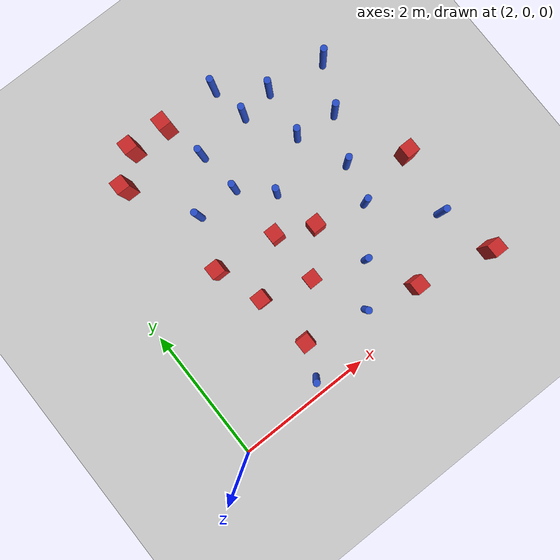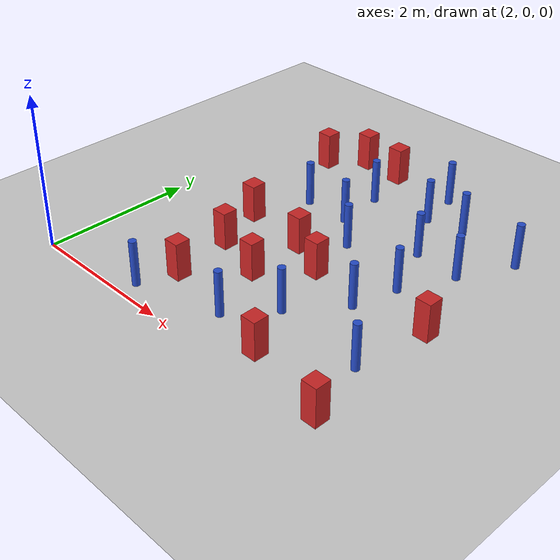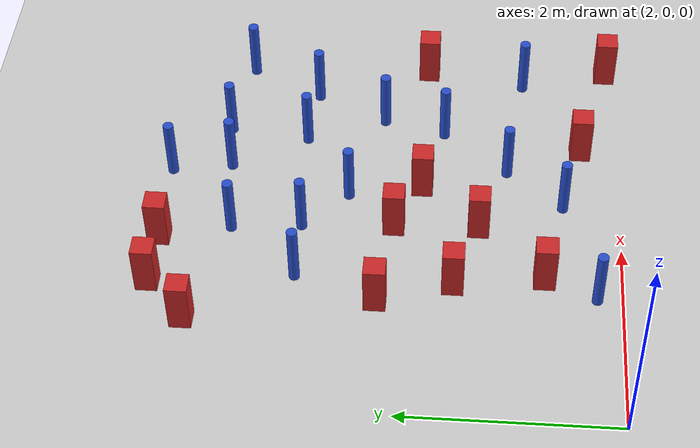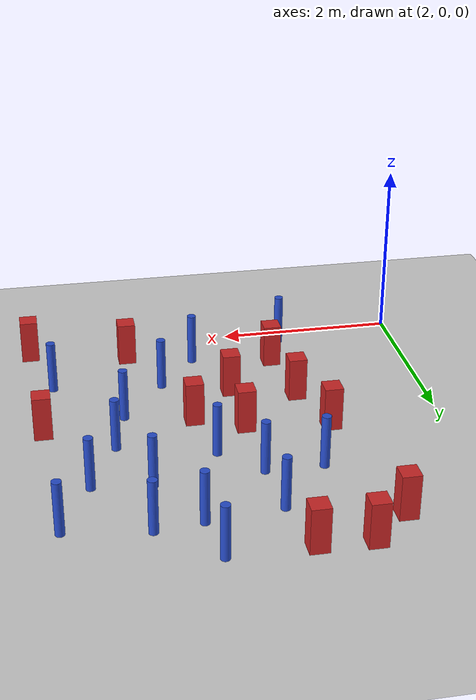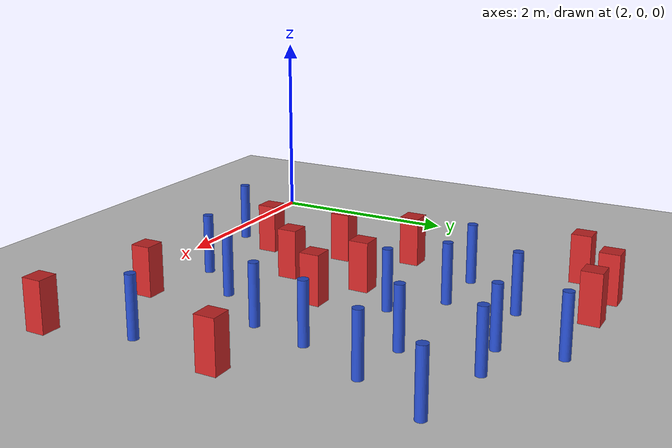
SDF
<sdf version="1.6">
 <world name="default">
  <model name="ground_plane">
   <static>1</static>
   <link name="link">
    <collision name="collision">
     <geometry><plane><normal>0 0 1</normal><size>100 100</size></plane></geometry>
     <surface><friction><ode><mu>100</mu><mu2>50</mu2></ode></friction></surface>
    </collision>
    <visual name="visual">
     <cast_shadows>0</cast_shadows>
     <geometry><plane><normal>0 0 1</normal><size>100 100</size></plane></geometry>
     <material>
      <ambient>1.0 1.0 1.0 1.0</ambient>
      <diffuse>0.8 0.8 0.8 1.0</diffuse>
      <specular>0.01 0.01 0.01 1.000000</specular>
     </material>
    </visual>
   </link>
  </model>
  <model name="pole_obstacle5">
   <static>true</static>
   <pose>4.54238996978 2.56478637814 7.38925637345e-09 -8.47170692798e-08 1.24976764937e-08 -1.74513093023e-07</pose>
   <link name="link">
    <pose>0 0 0.3 0 -0 0</pose>
    <inertial>
     <mass>1</mass>
     <inertia><ixx>0.145833</ixx><ixy>0</ixy><ixz>0</ixz><iyy>0.145833</iyy><iyz>0</iyz><izz>0.125</izz></inertia>
    </inertial>
    <collision name="collision">
     <geometry><cylinder><radius>0.05</radius><length>.6</length></cylinder></geometry>
    </collision>
    <visual name="visual">
     <geometry><cylinder><radius>0.05</radius><length>.6</length></cylinder></geometry>
     <material>
      <script><name>Gazebo/Blue</name><uri>file://media/materials/scripts/gazebo.material</uri></script>
     </material>
    </visual>
   </link>
  </model>
  <model name="pole_obstacle9">
   <static>true</static>
   <pose>4.86439608183 3.7236601719 7.38925637345e-09 -8.47170692798e-08 1.24976764937e-08 -1.74513093023e-07</pose>
   <link name="link">
    <pose>0 0 0.3 0 -0 0</pose>
    <inertial>
     <mass>1</mass>
     <inertia><ixx>0.145833</ixx><ixy>0</ixy><ixz>0</ixz><iyy>0.145833</iyy><iyz>0</iyz><izz>0.125</izz></inertia>
    </inertial>
    <collision name="collision">
     <geometry><cylinder><radius>0.05</radius><length>.6</length></cylinder></geometry>
    </collision>
    <visual name="visual">
     <geometry><cylinder><radius>0.05</radius><length>.6</length></cylinder></geometry>
     <material>
      <script><name>Gazebo/Blue</name><uri>file://media/materials/scripts/gazebo.material</uri></script>
     </material>
    </visual>
   </link>
  </model>
  <model name="square_post_obstacle17">
   <static>true</static>
   <pose>5.25384583525 0.369909139949 1.91545236811e-07 -7.35059704564e-06 1.12565212e-07 2.39332434364e-05</pose>
   <link name="link">
    <pose>0 0 0.25 0 -0 0</pose>
    <inertial>
     <mass>100</mass>
     <inertia>
      <ixx>0.166667</ixx>
      <ixy>0</ixy>
      <ixz>0</ixz>
      <iyy>0.166667</iyy>
      <iyz>0</iyz>
      <izz>0.166667</izz>
     </inertia>
    </inertial>
    <collision name="collision"><geometry><box><size>.2 .2 .5</size></box></geometry></collision>
    <visual name="visual">
     <geometry><box><size>.2 .2 .5</size></box></geometry>
     <material>
      <script><name>Gazebo/Red</name><uri>file://media/materials/scripts/gazebo.material</uri></script>
     </material>
    </visual>
   </link>
  </model>
  <model name="pole_obstacle34">
   <static>true</static>
   <pose>6.15226355741 0.936716093503 7.38925637345e-09 -8.47170692799e-08 1.24976765038e-08 -1.74513093018e-07</pose>
   <link name="link">
    <pose>0 0 0.3 0 -0 0</pose>
    <inertial>
     <mass>1</mass>
     <inertia><ixx>0.145833</ixx><ixy>0</ixy><ixz>0</ixz><iyy>0.145833</iyy><iyz>0</iyz><izz>0.125</izz></inertia>
    </inertial>
    <collision name="collision">
     <geometry><cylinder><radius>0.05</radius><length>.6</length></cylinder></geometry>
    </collision>
    <visual name="visual">
     <geometry><cylinder><radius>0.05</radius><length>.6</length></cylinder></geometry>
     <material>
      <script><name>Gazebo/Blue</name><uri>file://media/materials/scripts/gazebo.material</uri></script>
     </material>
    </visual>
   </link>
  </model>
  <model name="pole_obstacle36">
   <static>true</static>
   <pose>4.49692211645 0.537638080862 7.38925637345e-09 -8.471706928e-08 1.24976765164e-08 -1.74513093012e-07</pose>
   <link name="link">
    <pose>0 0 0.3 0 -0 0</pose>
    <inertial>
     <mass>1</mass>
     <inertia><ixx>0.145833</ixx><ixy>0</ixy><ixz>0</ixz><iyy>0.145833</iyy><iyz>0</iyz><izz>0.125</izz></inertia>
    </inertial>
    <collision name="collision">
     <geometry><cylinder><radius>0.05</radius><length>.6</length></cylinder></geometry>
    </collision>
    <visual name="visual">
     <geometry><cylinder><radius>0.05</radius><length>.6</length></cylinder></geometry>
     <material>
      <script><name>Gazebo/Blue</name><uri>file://media/materials/scripts/gazebo.material</uri></script>
     </material>
    </visual>
   </link>
  </model>
  <model name="square_post_obstacle44">
   <static>true</static>
   <pose>3.23896728383 2.22645428364 1.91545236811e-07 -7.35059704564e-06 1.12565212e-07 2.39332434364e-05</pose>
   <link name="link">
    <pose>0 0 0.25 0 -0 0</pose>
    <inertial>
     <mass>100</mass>
     <inertia>
      <ixx>0.166667</ixx>
      <ixy>0</ixy>
      <ixz>0</ixz>
      <iyy>0.166667</iyy>
      <iyz>0</iyz>
      <izz>0.166667</izz>
     </inertia>
    </inertial>
    <collision name="collision"><geometry><box><size>.2 .2 .5</size></box></geometry></collision>
    <visual name="visual">
     <geometry><box><size>.2 .2 .5</size></box></geometry>
     <material>
      <script><name>Gazebo/Red</name><uri>file://media/materials/scripts/gazebo.material</uri></script>
     </material>
    </visual>
   </link>
  </model>
  <model name="pole_obstacle55">
   <static>true</static>
   <pose>5.42195279625 1.69428588885 7.38925637345e-09 -8.471706928e-08 1.24976765134e-08 -1.74513093015e-07</pose>
   <link name="link">
    <pose>0 0 0.3 0 -0 0</pose>
    <inertial>
     <mass>1</mass>
     <inertia><ixx>0.145833</ixx><ixy>0</ixy><ixz>0</ixz><iyy>0.145833</iyy><iyz>0</iyz><izz>0.125</izz></inertia>
    </inertial>
    <collision name="collision">
     <geometry><cylinder><radius>0.05</radius><length>.6</length></cylinder></geometry>
    </collision>
    <visual name="visual">
     <geometry><cylinder><radius>0.05</radius><length>.6</length></cylinder></geometry>
     <material>
      <script><name>Gazebo/Blue</name><uri>file://media/materials/scripts/gazebo.material</uri></script>
     </material>
    </visual>
   </link>
  </model>
  <model name="square_post_obstacle58">
   <static>true</static>
   <pose>3.34307952893 4.29897692383 1.91545236811e-07 -7.35059704564e-06 1.12565212e-07 2.39332434364e-05</pose>
   <link name="link">
    <pose>0 0 0.25 0 -0 0</pose>
    <inertial>
     <mass>100</mass>
     <inertia>
      <ixx>0.166667</ixx>
      <ixy>0</ixy>
      <ixz>0</ixz>
      <iyy>0.166667</iyy>
      <iyz>0</iyz>
      <izz>0.166667</izz>
     </inertia>
    </inertial>
    <collision name="collision"><geometry><box><size>.2 .2 .5</size></box></geometry></collision>
    <visual name="visual">
     <geometry><box><size>.2 .2 .5</size></box></geometry>
     <material>
      <script><name>Gazebo/Red</name><uri>file://media/materials/scripts/gazebo.material</uri></script>
     </material>
    </visual>
   </link>
  </model>
  <model name="pole_obstacle103">
   <static>true</static>
   <pose>5.36540105432 3.78649801736 7.38925637345e-09 -8.47170692798e-08 1.24976764937e-08 -1.74513093023e-07</pose>
   <link name="link">
    <pose>0 0 0.3 0 -0 0</pose>
    <inertial>
     <mass>1</mass>
     <inertia><ixx>0.145833</ixx><ixy>0</ixy><ixz>0</ixz><iyy>0.145833</iyy><iyz>0</iyz><izz>0.125</izz></inertia>
    </inertial>
    <collision name="collision">
     <geometry><cylinder><radius>0.05</radius><length>.6</length></cylinder></geometry>
    </collision>
    <visual name="visual">
     <geometry><cylinder><radius>0.05</radius><length>.6</length></cylinder></geometry>
     <material>
      <script><name>Gazebo/Blue</name><uri>file://media/materials/scripts/gazebo.material</uri></script>
     </material>
    </visual>
   </link>
  </model>
  <model name="pole_obstacle121">
   <static>true</static>
   <pose>3.49970595557 2.97972236115 7.38925637345e-09 -8.47170692798e-08 1.24976764939e-08 -1.74513093025e-07</pose>
   <link name="link">
    <pose>0 0 0.3 0 -0 0</pose>
    <inertial>
     <mass>1</mass>
     <inertia><ixx>0.145833</ixx><ixy>0</ixy><ixz>0</ixz><iyy>0.145833</iyy><iyz>0</iyz><izz>0.125</izz></inertia>
    </inertial>
    <collision name="collision">
     <geometry><cylinder><radius>0.05</radius><length>.6</length></cylinder></geometry>
    </collision>
    <visual name="visual">
     <geometry><cylinder><radius>0.05</radius><length>.6</length></cylinder></geometry>
     <material>
      <script><name>Gazebo/Blue</name><uri>file://media/materials/scripts/gazebo.material</uri></script>
     </material>
    </visual>
   </link>
  </model>
  <model name="pole_obstacle122">
   <static>true</static>
   <pose>5.89256325081 2.96693084631 7.38925637345e-09 -8.47170692798e-08 1.24976764937e-08 -1.74513093023e-07</pose>
   <link name="link">
    <pose>0 0 0.3 0 -0 0</pose>
    <inertial>
     <mass>1</mass>
     <inertia><ixx>0.145833</ixx><ixy>0</ixy><ixz>0</ixz><iyy>0.145833</iyy><iyz>0</iyz><izz>0.125</izz></inertia>
    </inertial>
    <collision name="collision">
     <geometry><cylinder><radius>0.05</radius><length>.6</length></cylinder></geometry>
    </collision>
    <visual name="visual">
     <geometry><cylinder><radius>0.05</radius><length>.6</length></cylinder></geometry>
     <material>
      <script><name>Gazebo/Blue</name><uri>file://media/materials/scripts/gazebo.material</uri></script>
     </material>
    </visual>
   </link>
  </model>
  <model name="pole_obstacle140">
   <static>true</static>
   <pose>4.92893289476 1.07229710617 7.38925637345e-09 -8.471706928e-08 1.24976765134e-08 -1.74513093015e-07</pose>
   <link name="link">
    <pose>0 0 0.3 0 -0 0</pose>
    <inertial>
     <mass>1</mass>
     <inertia><ixx>0.145833</ixx><ixy>0</ixy><ixz>0</ixz><iyy>0.145833</iyy><iyz>0</iyz><izz>0.125</izz></inertia>
    </inertial>
    <collision name="collision">
     <geometry><cylinder><radius>0.05</radius><length>.6</length></cylinder></geometry>
    </collision>
    <visual name="visual">
     <geometry><cylinder><radius>0.05</radius><length>.6</length></cylinder></geometry>
     <material>
      <script><name>Gazebo/Blue</name><uri>file://media/materials/scripts/gazebo.material</uri></script>
     </material>
    </visual>
   </link>
  </model>
  <model name="pole_obstacle141">
   <static>true</static>
   <pose>4.12055723762 2.97585806209 7.38925637345e-09 -8.47170692798e-08 1.24976764937e-08 -1.74513093023e-07</pose>
   <link name="link">
    <pose>0 0 0.3 0 -0 0</pose>
    <inertial>
     <mass>1</mass>
     <inertia><ixx>0.145833</ixx><ixy>0</ixy><ixz>0</ixz><iyy>0.145833</iyy><iyz>0</iyz><izz>0.125</izz></inertia>
    </inertial>
    <collision name="collision">
     <geometry><cylinder><radius>0.05</radius><length>.6</length></cylinder></geometry>
    </collision>
    <visual name="visual">
     <geometry><cylinder><radius>0.05</radius><length>.6</length></cylinder></geometry>
     <material>
      <script><name>Gazebo/Blue</name><uri>file://media/materials/scripts/gazebo.material</uri></script>
     </material>
    </visual>
   </link>
  </model>
  <model name="square_post_obstacle127">
   <static>true</static>
   <pose>6.37756579108 0.111631129207 1.91545236811e-07 -7.35059704564e-06 1.12565212e-07 2.39332434364e-05</pose>
   <link name="link">
    <pose>0 0 0.25 0 -0 0</pose>
    <inertial>
     <mass>100</mass>
     <inertia>
      <ixx>0.166667</ixx>
      <ixy>0</ixy>
      <ixz>0</ixz>
      <iyy>0.166667</iyy>
      <iyz>0</iyz>
      <izz>0.166667</izz>
     </inertia>
    </inertial>
    <collision name="collision"><geometry><box><size>.2 .2 .5</size></box></geometry></collision>
    <visual name="visual">
     <geometry><box><size>.2 .2 .5</size></box></geometry>
     <material>
      <script><name>Gazebo/Red</name><uri>file://media/materials/scripts/gazebo.material</uri></script>
     </material>
    </visual>
   </link>
  </model>
  <model name="square_post_obstacle128">
   <static>true</static>
   <pose>3.90174752887 4.27979499866 1.91545236811e-07 -7.35059704564e-06 1.12565212e-07 2.39332434364e-05</pose>
   <link name="link">
    <pose>0 0 0.25 0 -0 0</pose>
    <inertial>
     <mass>100</mass>
     <inertia>
      <ixx>0.166667</ixx>
      <ixy>0</ixy>
      <ixz>0</ixz>
      <iyy>0.166667</iyy>
      <iyz>0</iyz>
      <izz>0.166667</izz>
     </inertia>
    </inertial>
    <collision name="collision"><geometry><box><size>.2 .2 .5</size></box></geometry></collision>
    <visual name="visual">
     <geometry><box><size>.2 .2 .5</size></box></geometry>
     <material>
      <script><name>Gazebo/Red</name><uri>file://media/materials/scripts/gazebo.material</uri></script>
     </material>
    </visual>
   </link>
  </model>
  <model name="square_post_obstacle131">
   <static>true</static>
   <pose>3.58319737693 0.709496786827 1.91545236811e-07 -7.35059704564e-06 1.12565212e-07 2.39332434364e-05</pose>
   <link name="link">
    <pose>0 0 0.25 0 -0 0</pose>
    <inertial>
     <mass>100</mass>
     <inertia>
      <ixx>0.166667</ixx>
      <ixy>0</ixy>
      <ixz>0</ixz>
      <iyy>0.166667</iyy>
      <iyz>0</iyz>
      <izz>0.166667</izz>
     </inertia>
    </inertial>
    <collision name="collision"><geometry><box><size>.2 .2 .5</size></box></geometry></collision>
    <visual name="visual">
     <geometry><box><size>.2 .2 .5</size></box></geometry>
     <material>
      <script><name>Gazebo/Red</name><uri>file://media/materials/scripts/gazebo.material</uri></script>
     </material>
    </visual>
   </link>
  </model>
  <model name="pole_obstacle157">
   <static>true</static>
   <pose>3.38433895781 0.232022976258 7.38925637345e-09 -8.471706928e-08 1.24976765149e-08 -1.74513093013e-07</pose>
   <link name="link">
    <pose>0 0 0.3 0 -0 0</pose>
    <inertial>
     <mass>1</mass>
     <inertia><ixx>0.145833</ixx><ixy>0</ixy><ixz>0</ixz><iyy>0.145833</iyy><iyz>0</iyz><izz>0.125</izz></inertia>
    </inertial>
    <collision name="collision">
     <geometry><cylinder><radius>0.05</radius><length>.6</length></cylinder></geometry>
    </collision>
    <visual name="visual">
     <geometry><cylinder><radius>0.05</radius><length>.6</length></cylinder></geometry>
     <material>
      <script><name>Gazebo/Blue</name><uri>file://media/materials/scripts/gazebo.material</uri></script>
     </material>
    </visual>
   </link>
  </model>
  <model name="square_post_obstacle153">
   <static>true</static>
   <pose>4.68096405431 1.87436678496 1.91545236811e-07 -7.35059704564e-06 1.12565212e-07 2.39332434364e-05</pose>
   <link name="link">
    <pose>0 0 0.25 0 -0 0</pose>
    <inertial>
     <mass>100</mass>
     <inertia>
      <ixx>0.166667</ixx>
      <ixy>0</ixy>
      <ixz>0</ixz>
      <iyy>0.166667</iyy>
      <iyz>0</iyz>
      <izz>0.166667</izz>
     </inertia>
    </inertial>
    <collision name="collision"><geometry><box><size>.2 .2 .5</size></box></geometry></collision>
    <visual name="visual">
     <geometry><box><size>.2 .2 .5</size></box></geometry>
     <material>
      <script><name>Gazebo/Red</name><uri>file://media/materials/scripts/gazebo.material</uri></script>
     </material>
    </visual>
   </link>
  </model>
  <model name="pole_obstacle160">
   <static>true</static>
   <pose>4.05605083759 3.62994173317 7.38925637345e-09 -8.47170692798e-08 1.24976764937e-08 -1.74513093023e-07</pose>
   <link name="link">
    <pose>0 0 0.3 0 -0 0</pose>
    <inertial>
     <mass>1</mass>
     <inertia><ixx>0.145833</ixx><ixy>0</ixy><ixz>0</ixz><iyy>0.145833</iyy><iyz>0</iyz><izz>0.125</izz></inertia>
    </inertial>
    <collision name="collision">
     <geometry><cylinder><radius>0.05</radius><length>.6</length></cylinder></geometry>
    </collision>
    <visual name="visual">
     <geometry><cylinder><radius>0.05</radius><length>.6</length></cylinder></geometry>
     <material>
      <script><name>Gazebo/Blue</name><uri>file://media/materials/scripts/gazebo.material</uri></script>
     </material>
    </visual>
   </link>
  </model>
  <model name="square_post_obstacle158">
   <static>true</static>
   <pose>4.15856500477 2.11439326302 1.91545236811e-07 -7.35059704564e-06 1.12565212e-07 2.39332434364e-05</pose>
   <link name="link">
    <pose>0 0 0.25 0 -0 0</pose>
    <inertial>
     <mass>100</mass>
     <inertia>
      <ixx>0.166667</ixx>
      <ixy>0</ixy>
      <ixz>0</ixz>
      <iyy>0.166667</iyy>
      <iyz>0</iyz>
      <izz>0.166667</izz>
     </inertia>
    </inertial>
    <collision name="collision"><geometry><box><size>.2 .2 .5</size></box></geometry></collision>
    <visual name="visual">
     <geometry><box><size>.2 .2 .5</size></box></geometry>
     <material>
      <script><name>Gazebo/Red</name><uri>file://media/materials/scripts/gazebo.material</uri></script>
     </material>
    </visual>
   </link>
  </model>
  <model name="pole_obstacle172">
   <static>true</static>
   <pose>6.2372734884 3.65811585942 7.38925637345e-09 -8.47170692798e-08 1.24976764937e-08 -1.74513093023e-07</pose>
   <link name="link">
    <pose>0 0 0.3 0 -0 0</pose>
    <inertial>
     <mass>1</mass>
     <inertia><ixx>0.145833</ixx><ixy>0</ixy><ixz>0</ixz><iyy>0.145833</iyy><iyz>0</iyz><izz>0.125</izz></inertia>
    </inertial>
    <collision name="collision">
     <geometry><cylinder><radius>0.05</radius><length>.6</length></cylinder></geometry>
    </collision>
    <visual name="visual">
     <geometry><cylinder><radius>0.05</radius><length>.6</length></cylinder></geometry>
     <material>
      <script><name>Gazebo/Blue</name><uri>file://media/materials/scripts/gazebo.material</uri></script>
     </material>
    </visual>
   </link>
  </model>
  <model name="square_post_obstacle168">
   <static>true</static>
   <pose>3.46857931395 1.53829510034 1.91545236811e-07 -7.35059704564e-06 1.12565212e-07 2.39332434364e-05</pose>
   <link name="link">
    <pose>0 0 0.25 0 -0 0</pose>
    <inertial>
     <mass>100</mass>
     <inertia>
      <ixx>0.166667</ixx>
      <ixy>0</ixy>
      <ixz>0</ixz>
      <iyy>0.166667</iyy>
      <iyz>0</iyz>
      <izz>0.166667</izz>
     </inertia>
    </inertial>
    <collision name="collision"><geometry><box><size>.2 .2 .5</size></box></geometry></collision>
    <visual name="visual">
     <geometry><box><size>.2 .2 .5</size></box></geometry>
     <material>
      <script><name>Gazebo/Red</name><uri>file://media/materials/scripts/gazebo.material</uri></script>
     </material>
    </visual>
   </link>
  </model>
  <model name="square_post_obstacle179">
   <static>true</static>
   <pose>4.1787353244 1.32487419497 1.91545236811e-07 -7.35059704564e-06 1.12565212e-07 2.39332434364e-05</pose>
   <link name="link">
    <pose>0 0 0.25 0 -0 0</pose>
    <inertial>
     <mass>100</mass>
     <inertia>
      <ixx>0.166667</ixx>
      <ixy>0</ixy>
      <ixz>0</ixz>
      <iyy>0.166667</iyy>
      <iyz>0</iyz>
      <izz>0.166667</izz>
     </inertia>
    </inertial>
    <collision name="collision"><geometry><box><size>.2 .2 .5</size></box></geometry></collision>
    <visual name="visual">
     <geometry><box><size>.2 .2 .5</size></box></geometry>
     <material>
      <script><name>Gazebo/Red</name><uri>file://media/materials/scripts/gazebo.material</uri></script>
     </material>
    </visual>
   </link>
  </model>
  <model name="square_post_obstacle184">
   <static>true</static>
   <pose>2.93462833641 3.92752598488 1.91545236811e-07 -7.35059704564e-06 1.12565212e-07 2.39332434364e-05</pose>
   <link name="link">
    <pose>0 0 0.25 0 -0 0</pose>
    <inertial>
     <mass>100</mass>
     <inertia>
      <ixx>0.166667</ixx>
      <ixy>0</ixy>
      <ixz>0</ixz>
      <iyy>0.166667</iyy>
      <iyz>0</iyz>
      <izz>0.166667</izz>
     </inertia>
    </inertial>
    <collision name="collision"><geometry><box><size>.2 .2 .5</size></box></geometry></collision>
    <visual name="visual">
     <geometry><box><size>.2 .2 .5</size></box></geometry>
     <material>
      <script><name>Gazebo/Red</name><uri>file://media/materials/scripts/gazebo.material</uri></script>
     </material>
    </visual>
   </link>
  </model>
  <model name="square_post_obstacle194">
   <static>true</static>
   <pose>6.3098794007 1.88328564717 1.91545236811e-07 -7.35059704564e-06 1.12565212e-07 2.39332434364e-05</pose>
   <link name="link">
    <pose>0 0 0.25 0 -0 0</pose>
    <inertial>
     <mass>100</mass>
     <inertia>
      <ixx>0.166667</ixx>
      <ixy>0</ixy>
      <ixz>0</ixz>
      <iyy>0.166667</iyy>
      <iyz>0</iyz>
      <izz>0.166667</izz>
     </inertia>
    </inertial>
    <collision name="collision"><geometry><box><size>.2 .2 .5</size></box></geometry></collision>
    <visual name="visual">
     <geometry><box><size>.2 .2 .5</size></box></geometry>
     <material>
      <script><name>Gazebo/Red</name><uri>file://media/materials/scripts/gazebo.material</uri></script>
     </material>
    </visual>
   </link>
  </model>
  <model name="pole_obstacle191">
   <static>true</static>
   <pose>5.26998940884 3.02655387548 7.38925637345e-09 -8.47170692798e-08 1.24976764937e-08 -1.74513093023e-07</pose>
   <link name="link">
    <pose>0 0 0.3 0 -0 0</pose>
    <inertial>
     <mass>1</mass>
     <inertia><ixx>0.145833</ixx><ixy>0</ixy><ixz>0</ixz><iyy>0.145833</iyy><iyz>0</iyz><izz>0.125</izz></inertia>
    </inertial>
    <collision name="collision">
     <geometry><cylinder><radius>0.05</radius><length>.6</length></cylinder></geometry>
    </collision>
    <visual name="visual">
     <geometry><cylinder><radius>0.05</radius><length>.6</length></cylinder></geometry>
     <material>
      <script><name>Gazebo/Blue</name><uri>file://media/materials/scripts/gazebo.material</uri></script>
     </material>
    </visual>
   </link>
  </model>
  <model name="pole_obstacle194">
   <static>true</static>
   <pose>4.76900648087 4.28651370461 7.38925637345e-09 -8.47170692796e-08 1.24976764786e-08 -1.74513093032e-07</pose>
   <link name="link">
    <pose>0 0 0.3 0 -0 0</pose>
    <inertial>
     <mass>1</mass>
     <inertia><ixx>0.145833</ixx><ixy>0</ixy><ixz>0</ixz><iyy>0.145833</iyy><iyz>0</iyz><izz>0.125</izz></inertia>
    </inertial>
    <collision name="collision">
     <geometry><cylinder><radius>0.05</radius><length>.6</length></cylinder></geometry>
    </collision>
    <visual name="visual">
     <geometry><cylinder><radius>0.05</radius><length>.6</length></cylinder></geometry>
     <material>
      <script><name>Gazebo/Blue</name><uri>file://media/materials/scripts/gazebo.material</uri></script>
     </material>
    </visual>
   </link>
  </model>
  <model name="pole_obstacle218">
   <static>true</static>
   <pose>5.57083851277 2.284967224 7.38925637345e-09 -8.47170692798e-08 1.24976764937e-08 -1.74513093023e-07</pose>
   <link name="link">
    <pose>0 0 0.3 0 -0 0</pose>
    <inertial>
     <mass>1</mass>
     <inertia><ixx>0.145833</ixx><ixy>0</ixy><ixz>0</ixz><iyy>0.145833</iyy><iyz>0</iyz><izz>0.125</izz></inertia>
    </inertial>
    <collision name="collision">
     <geometry><cylinder><radius>0.05</radius><length>.6</length></cylinder></geometry>
    </collision>
    <visual name="visual">
     <geometry><cylinder><radius>0.05</radius><length>.6</length></cylinder></geometry>
     <material>
      <script><name>Gazebo/Blue</name><uri>file://media/materials/scripts/gazebo.material</uri></script>
     </material>
    </visual>
   </link>
  </model>
 </world>
</sdf>
